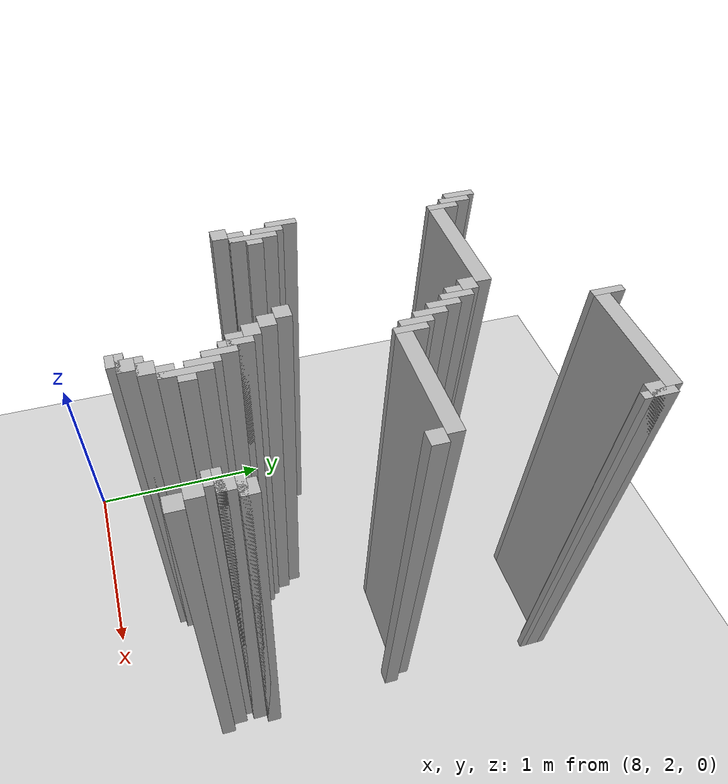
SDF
<sdf version="1.6">
 <world name="slam_world">
  <model name="ground_plane">
   <static>true</static>
   <link name="link">
    <collision name="collision">
     <geometry><plane><normal>0 0 1</normal><size>100 100</size></plane></geometry>
    </collision>
    <visual name="visual">
     <geometry><plane><normal>0 0 1</normal><size>100 100</size></plane></geometry>
     <material>
      <ambient>0.8 0.8 0.8 1</ambient>
      <diffuse>0.8 0.8 0.8 1</diffuse>
      <specular>0.8 0.8 0.8 1</specular>
     </material>
    </visual>
   </link>
  </model>
  <model name="wall_4324">
   <static>true</static>
   <pose>9.066125290023201 4.315545243619489 1.0 0 0 0</pose>
   <link name="link">
    <collision name="collision">
     <geometry><box><size>0.03480278422273782 0.13921113689095127 2.0</size></box></geometry>
    </collision>
    <visual name="visual">
     <geometry><box><size>0.03480278422273782 0.13921113689095127 2.0</size></box></geometry>
     <material><ambient>0.5 0.5 0.5 1</ambient><diffuse>0.7 0.7 0.7 1</diffuse></material>
    </visual>
   </link>
  </model>
  <model name="wall_4340">
   <static>true</static>
   <pose>9.344547563805104 4.280742459396752 1.0 0 0 0</pose>
   <link name="link">
    <collision name="collision">
     <geometry><box><size>0.5220417633410672 0.06960556844547564 2.0</size></box></geometry>
    </collision>
    <visual name="visual">
     <geometry><box><size>0.5220417633410672 0.06960556844547564 2.0</size></box></geometry>
     <material><ambient>0.5 0.5 0.5 1</ambient><diffuse>0.7 0.7 0.7 1</diffuse></material>
    </visual>
   </link>
  </model>
  <model name="wall_4352">
   <static>true</static>
   <pose>9.622969837587007 4.211136890951276 1.0 0 0 0</pose>
   <link name="link">
    <collision name="collision">
     <geometry><box><size>0.03480278422273782 0.13921113689095127 2.0</size></box></geometry>
    </collision>
    <visual name="visual">
     <geometry><box><size>0.03480278422273782 0.13921113689095127 2.0</size></box></geometry>
     <material><ambient>0.5 0.5 0.5 1</ambient><diffuse>0.7 0.7 0.7 1</diffuse></material>
    </visual>
   </link>
  </model>
  <model name="wall_4367">
   <static>true</static>
   <pose>9.605568445475638 4.211136890951276 1.0 0 0 0</pose>
   <link name="link">
    <collision name="collision">
     <geometry><box><size>0.06960556844547564 0.06960556844547564 2.0</size></box></geometry>
    </collision>
    <visual name="visual">
     <geometry><box><size>0.06960556844547564 0.06960556844547564 2.0</size></box></geometry>
     <material><ambient>0.5 0.5 0.5 1</ambient><diffuse>0.7 0.7 0.7 1</diffuse></material>
    </visual>
   </link>
  </model>
  <model name="wall_4427">
   <static>true</static>
   <pose>8.265661252900232 4.002320185614849 1.0 0 0 0</pose>
   <link name="link">
    <collision name="collision">
     <geometry><box><size>0.03480278422273782 0.13921113689095127 2.0</size></box></geometry>
    </collision>
    <visual name="visual">
     <geometry><box><size>0.03480278422273782 0.13921113689095127 2.0</size></box></geometry>
     <material><ambient>0.5 0.5 0.5 1</ambient><diffuse>0.7 0.7 0.7 1</diffuse></material>
    </visual>
   </link>
  </model>
  <model name="wall_4443">
   <static>true</static>
   <pose>8.30046403712297 3.967517401392111 1.0 0 0 0</pose>
   <link name="link">
    <collision name="collision">
     <geometry><box><size>0.03480278422273782 0.13921113689095127 2.0</size></box></geometry>
    </collision>
    <visual name="visual">
     <geometry><box><size>0.03480278422273782 0.13921113689095127 2.0</size></box></geometry>
     <material><ambient>0.5 0.5 0.5 1</ambient><diffuse>0.7 0.7 0.7 1</diffuse></material>
    </visual>
   </link>
  </model>
  <model name="wall_4468">
   <static>true</static>
   <pose>8.335266821345707 3.897911832946636 1.0 0 0 0</pose>
   <link name="link">
    <collision name="collision">
     <geometry><box><size>0.03480278422273782 0.13921113689095127 2.0</size></box></geometry>
    </collision>
    <visual name="visual">
     <geometry><box><size>0.03480278422273782 0.13921113689095127 2.0</size></box></geometry>
     <material><ambient>0.5 0.5 0.5 1</ambient><diffuse>0.7 0.7 0.7 1</diffuse></material>
    </visual>
   </link>
  </model>
  <model name="wall_4492">
   <static>true</static>
   <pose>8.61368909512761 3.863109048723898 1.0 0 0 0</pose>
   <link name="link">
    <collision name="collision">
     <geometry><box><size>0.5220417633410672 0.06960556844547564 2.0</size></box></geometry>
    </collision>
    <visual name="visual">
     <geometry><box><size>0.5220417633410672 0.06960556844547564 2.0</size></box></geometry>
     <material><ambient>0.5 0.5 0.5 1</ambient><diffuse>0.7 0.7 0.7 1</diffuse></material>
    </visual>
   </link>
  </model>
  <model name="wall_4505">
   <static>true</static>
   <pose>8.874709976798144 3.793503480278422 1.0 0 0 0</pose>
   <link name="link">
    <collision name="collision">
     <geometry><box><size>0.06960556844547564 0.06960556844547564 2.0</size></box></geometry>
    </collision>
    <visual name="visual">
     <geometry><box><size>0.06960556844547564 0.06960556844547564 2.0</size></box></geometry>
     <material><ambient>0.5 0.5 0.5 1</ambient><diffuse>0.7 0.7 0.7 1</diffuse></material>
    </visual>
   </link>
  </model>
  <model name="wall_4516">
   <static>true</static>
   <pose>8.92691415313225 3.7238979118329465 1.0 0 0 0</pose>
   <link name="link">
    <collision name="collision">
     <geometry><box><size>0.03480278422273782 0.13921113689095127 2.0</size></box></geometry>
    </collision>
    <visual name="visual">
     <geometry><box><size>0.03480278422273782 0.13921113689095127 2.0</size></box></geometry>
     <material><ambient>0.5 0.5 0.5 1</ambient><diffuse>0.7 0.7 0.7 1</diffuse></material>
    </visual>
   </link>
  </model>
  <model name="wall_4527">
   <static>true</static>
   <pose>8.909512761020881 3.7238979118329465 1.0 0 0 0</pose>
   <link name="link">
    <collision name="collision">
     <geometry><box><size>0.06960556844547564 0.06960556844547564 2.0</size></box></geometry>
    </collision>
    <visual name="visual">
     <geometry><box><size>0.06960556844547564 0.06960556844547564 2.0</size></box></geometry>
     <material><ambient>0.5 0.5 0.5 1</ambient><diffuse>0.7 0.7 0.7 1</diffuse></material>
    </visual>
   </link>
  </model>
  <model name="wall_4538">
   <static>true</static>
   <pose>8.961716937354987 3.6542923433874708 1.0 0 0 0</pose>
   <link name="link">
    <collision name="collision">
     <geometry><box><size>0.03480278422273782 0.13921113689095127 2.0</size></box></geometry>
    </collision>
    <visual name="visual">
     <geometry><box><size>0.03480278422273782 0.13921113689095127 2.0</size></box></geometry>
     <material><ambient>0.5 0.5 0.5 1</ambient><diffuse>0.7 0.7 0.7 1</diffuse></material>
    </visual>
   </link>
  </model>
  <model name="wall_4553">
   <static>true</static>
   <pose>8.996519721577727 3.584686774941995 1.0 0 0 0</pose>
   <link name="link">
    <collision name="collision">
     <geometry><box><size>0.03480278422273782 0.13921113689095127 2.0</size></box></geometry>
    </collision>
    <visual name="visual">
     <geometry><box><size>0.03480278422273782 0.13921113689095127 2.0</size></box></geometry>
     <material><ambient>0.5 0.5 0.5 1</ambient><diffuse>0.7 0.7 0.7 1</diffuse></material>
    </visual>
   </link>
  </model>
  <model name="wall_4568">
   <static>true</static>
   <pose>9.031322505800464 3.51508120649652 1.0 0 0 0</pose>
   <link name="link">
    <collision name="collision">
     <geometry><box><size>0.03480278422273782 0.13921113689095127 2.0</size></box></geometry>
    </collision>
    <visual name="visual">
     <geometry><box><size>0.03480278422273782 0.13921113689095127 2.0</size></box></geometry>
     <material><ambient>0.5 0.5 0.5 1</ambient><diffuse>0.7 0.7 0.7 1</diffuse></material>
    </visual>
   </link>
  </model>
  <model name="wall_4579">
   <static>true</static>
   <pose>9.066125290023201 3.480278422273782 1.0 0 0 0</pose>
   <link name="link">
    <collision name="collision">
     <geometry><box><size>0.03480278422273782 0.13921113689095127 2.0</size></box></geometry>
    </collision>
    <visual name="visual">
     <geometry><box><size>0.03480278422273782 0.13921113689095127 2.0</size></box></geometry>
     <material><ambient>0.5 0.5 0.5 1</ambient><diffuse>0.7 0.7 0.7 1</diffuse></material>
    </visual>
   </link>
  </model>
  <model name="wall_4597">
   <static>true</static>
   <pose>9.344547563805104 3.445475638051044 1.0 0 0 0</pose>
   <link name="link">
    <collision name="collision">
     <geometry><box><size>0.5220417633410672 0.06960556844547564 2.0</size></box></geometry>
    </collision>
    <visual name="visual">
     <geometry><box><size>0.5220417633410672 0.06960556844547564 2.0</size></box></geometry>
     <material><ambient>0.5 0.5 0.5 1</ambient><diffuse>0.7 0.7 0.7 1</diffuse></material>
    </visual>
   </link>
  </model>
  <model name="wall_4618">
   <static>true</static>
   <pose>9.605568445475638 3.3758700696055683 1.0 0 0 0</pose>
   <link name="link">
    <collision name="collision">
     <geometry><box><size>0.06960556844547564 0.06960556844547564 2.0</size></box></geometry>
    </collision>
    <visual name="visual">
     <geometry><box><size>0.06960556844547564 0.06960556844547564 2.0</size></box></geometry>
     <material><ambient>0.5 0.5 0.5 1</ambient><diffuse>0.7 0.7 0.7 1</diffuse></material>
    </visual>
   </link>
  </model>
  <model name="wall_4693">
   <static>true</static>
   <pose>8.265661252900232 3.167053364269141 1.0 0 0 0</pose>
   <link name="link">
    <collision name="collision">
     <geometry><box><size>0.03480278422273782 0.13921113689095127 2.0</size></box></geometry>
    </collision>
    <visual name="visual">
     <geometry><box><size>0.03480278422273782 0.13921113689095127 2.0</size></box></geometry>
     <material><ambient>0.5 0.5 0.5 1</ambient><diffuse>0.7 0.7 0.7 1</diffuse></material>
    </visual>
   </link>
  </model>
  <model name="wall_4710">
   <static>true</static>
   <pose>8.30046403712297 3.097447795823666 1.0 0 0 0</pose>
   <link name="link">
    <collision name="collision">
     <geometry><box><size>0.03480278422273782 0.13921113689095127 2.0</size></box></geometry>
    </collision>
    <visual name="visual">
     <geometry><box><size>0.03480278422273782 0.13921113689095127 2.0</size></box></geometry>
     <material><ambient>0.5 0.5 0.5 1</ambient><diffuse>0.7 0.7 0.7 1</diffuse></material>
    </visual>
   </link>
  </model>
  <model name="wall_4727">
   <static>true</static>
   <pose>8.335266821345707 3.02784222737819 1.0 0 0 0</pose>
   <link name="link">
    <collision name="collision">
     <geometry><box><size>0.03480278422273782 0.2088167053364269 2.0</size></box></geometry>
    </collision>
    <visual name="visual">
     <geometry><box><size>0.03480278422273782 0.2088167053364269 2.0</size></box></geometry>
     <material><ambient>0.5 0.5 0.5 1</ambient><diffuse>0.7 0.7 0.7 1</diffuse></material>
    </visual>
   </link>
  </model>
  <model name="wall_4749">
   <static>true</static>
   <pose>8.370069605568444 3.02784222737819 1.0 0 0 0</pose>
   <link name="link">
    <collision name="collision">
     <geometry><box><size>0.03480278422273782 0.06960556844547564 2.0</size></box></geometry>
    </collision>
    <visual name="visual">
     <geometry><box><size>0.03480278422273782 0.06960556844547564 2.0</size></box></geometry>
     <material><ambient>0.5 0.5 0.5 1</ambient><diffuse>0.7 0.7 0.7 1</diffuse></material>
    </visual>
   </link>
  </model>
  <model name="wall_4750">
   <static>true</static>
   <pose>8.839907192575406 3.02784222737819 1.0 0 0 0</pose>
   <link name="link">
    <collision name="collision">
     <geometry><box><size>0.06960556844547564 0.06960556844547564 2.0</size></box></geometry>
    </collision>
    <visual name="visual">
     <geometry><box><size>0.06960556844547564 0.06960556844547564 2.0</size></box></geometry>
     <material><ambient>0.5 0.5 0.5 1</ambient><diffuse>0.7 0.7 0.7 1</diffuse></material>
    </visual>
   </link>
  </model>
  <model name="wall_4769">
   <static>true</static>
   <pose>8.317865429234338 2.9582366589327145 1.0 0 0 0</pose>
   <link name="link">
    <collision name="collision">
     <geometry><box><size>0.06960556844547564 0.06960556844547564 2.0</size></box></geometry>
    </collision>
    <visual name="visual">
     <geometry><box><size>0.06960556844547564 0.06960556844547564 2.0</size></box></geometry>
     <material><ambient>0.5 0.5 0.5 1</ambient><diffuse>0.7 0.7 0.7 1</diffuse></material>
    </visual>
   </link>
  </model>
  <model name="wall_4770">
   <static>true</static>
   <pose>8.874709976798144 2.9582366589327145 1.0 0 0 0</pose>
   <link name="link">
    <collision name="collision">
     <geometry><box><size>0.06960556844547564 0.06960556844547564 2.0</size></box></geometry>
    </collision>
    <visual name="visual">
     <geometry><box><size>0.06960556844547564 0.06960556844547564 2.0</size></box></geometry>
     <material><ambient>0.5 0.5 0.5 1</ambient><diffuse>0.7 0.7 0.7 1</diffuse></material>
    </visual>
   </link>
  </model>
  <model name="wall_4789">
   <static>true</static>
   <pose>8.2830626450116 2.8886310904872388 1.0 0 0 0</pose>
   <link name="link">
    <collision name="collision">
     <geometry><box><size>0.06960556844547564 0.06960556844547564 2.0</size></box></geometry>
    </collision>
    <visual name="visual">
     <geometry><box><size>0.06960556844547564 0.06960556844547564 2.0</size></box></geometry>
     <material><ambient>0.5 0.5 0.5 1</ambient><diffuse>0.7 0.7 0.7 1</diffuse></material>
    </visual>
   </link>
  </model>
  <model name="wall_4790">
   <static>true</static>
   <pose>8.909512761020881 2.8886310904872388 1.0 0 0 0</pose>
   <link name="link">
    <collision name="collision">
     <geometry><box><size>0.06960556844547564 0.06960556844547564 2.0</size></box></geometry>
    </collision>
    <visual name="visual">
     <geometry><box><size>0.06960556844547564 0.06960556844547564 2.0</size></box></geometry>
     <material><ambient>0.5 0.5 0.5 1</ambient><diffuse>0.7 0.7 0.7 1</diffuse></material>
    </visual>
   </link>
  </model>
  <model name="wall_4803">
   <static>true</static>
   <pose>8.961716937354987 2.819025522041763 1.0 0 0 0</pose>
   <link name="link">
    <collision name="collision">
     <geometry><box><size>0.03480278422273782 0.13921113689095127 2.0</size></box></geometry>
    </collision>
    <visual name="visual">
     <geometry><box><size>0.03480278422273782 0.13921113689095127 2.0</size></box></geometry>
     <material><ambient>0.5 0.5 0.5 1</ambient><diffuse>0.7 0.7 0.7 1</diffuse></material>
    </visual>
   </link>
  </model>
  <model name="wall_4816">
   <static>true</static>
   <pose>8.944315545243619 2.819025522041763 1.0 0 0 0</pose>
   <link name="link">
    <collision name="collision">
     <geometry><box><size>0.06960556844547564 0.06960556844547564 2.0</size></box></geometry>
    </collision>
    <visual name="visual">
     <geometry><box><size>0.06960556844547564 0.06960556844547564 2.0</size></box></geometry>
     <material><ambient>0.5 0.5 0.5 1</ambient><diffuse>0.7 0.7 0.7 1</diffuse></material>
    </visual>
   </link>
  </model>
  <model name="wall_4829">
   <static>true</static>
   <pose>8.996519721577727 2.7494199535962878 1.0 0 0 0</pose>
   <link name="link">
    <collision name="collision">
     <geometry><box><size>0.03480278422273782 0.13921113689095127 2.0</size></box></geometry>
    </collision>
    <visual name="visual">
     <geometry><box><size>0.03480278422273782 0.13921113689095127 2.0</size></box></geometry>
     <material><ambient>0.5 0.5 0.5 1</ambient><diffuse>0.7 0.7 0.7 1</diffuse></material>
    </visual>
   </link>
  </model>
  <model name="wall_4846">
   <static>true</static>
   <pose>9.031322505800464 2.679814385150812 1.0 0 0 0</pose>
   <link name="link">
    <collision name="collision">
     <geometry><box><size>0.03480278422273782 0.13921113689095127 2.0</size></box></geometry>
    </collision>
    <visual name="visual">
     <geometry><box><size>0.03480278422273782 0.13921113689095127 2.0</size></box></geometry>
     <material><ambient>0.5 0.5 0.5 1</ambient><diffuse>0.7 0.7 0.7 1</diffuse></material>
    </visual>
   </link>
  </model>
  <model name="wall_4847">
   <static>true</static>
   <pose>9.640371229698376 2.71461716937355 1.0 0 0 0</pose>
   <link name="link">
    <collision name="collision">
     <geometry><box><size>0.06960556844547564 0.06960556844547564 2.0</size></box></geometry>
    </collision>
    <visual name="visual">
     <geometry><box><size>0.06960556844547564 0.06960556844547564 2.0</size></box></geometry>
     <material><ambient>0.5 0.5 0.5 1</ambient><diffuse>0.7 0.7 0.7 1</diffuse></material>
    </visual>
   </link>
  </model>
  <model name="wall_4859">
   <static>true</static>
   <pose>9.066125290023201 2.6102088167053363 1.0 0 0 0</pose>
   <link name="link">
    <collision name="collision">
     <geometry><box><size>0.03480278422273782 0.2088167053364269 2.0</size></box></geometry>
    </collision>
    <visual name="visual">
     <geometry><box><size>0.03480278422273782 0.2088167053364269 2.0</size></box></geometry>
     <material><ambient>0.5 0.5 0.5 1</ambient><diffuse>0.7 0.7 0.7 1</diffuse></material>
    </visual>
   </link>
  </model>
  <model name="wall_4860">
   <static>true</static>
   <pose>9.622969837587007 2.6972157772621808 1.0 0 0 0</pose>
   <link name="link">
    <collision name="collision">
     <geometry><box><size>0.10440835266821345 0.03480278422273782 2.0</size></box></geometry>
    </collision>
    <visual name="visual">
     <geometry><box><size>0.10440835266821345 0.03480278422273782 2.0</size></box></geometry>
     <material><ambient>0.5 0.5 0.5 1</ambient><diffuse>0.7 0.7 0.7 1</diffuse></material>
    </visual>
   </link>
  </model>
  <model name="wall_4868">
   <static>true</static>
   <pose>9.605568445475638 2.645011600928074 1.0 0 0 0</pose>
   <link name="link">
    <collision name="collision">
     <geometry><box><size>0.06960556844547564 0.06960556844547564 2.0</size></box></geometry>
    </collision>
    <visual name="visual">
     <geometry><box><size>0.06960556844547564 0.06960556844547564 2.0</size></box></geometry>
     <material><ambient>0.5 0.5 0.5 1</ambient><diffuse>0.7 0.7 0.7 1</diffuse></material>
    </visual>
   </link>
  </model>
  <model name="wall_4877">
   <static>true</static>
   <pose>9.100928074245939 2.6102088167053363 1.0 0 0 0</pose>
   <link name="link">
    <collision name="collision">
     <geometry><box><size>0.03480278422273782 0.06960556844547564 2.0</size></box></geometry>
    </collision>
    <visual name="visual">
     <geometry><box><size>0.03480278422273782 0.06960556844547564 2.0</size></box></geometry>
     <material><ambient>0.5 0.5 0.5 1</ambient><diffuse>0.7 0.7 0.7 1</diffuse></material>
    </visual>
   </link>
  </model>
  <model name="wall_4878">
   <static>true</static>
   <pose>9.588167053364268 2.627610208816705 1.0 0 0 0</pose>
   <link name="link">
    <collision name="collision">
     <geometry><box><size>0.10440835266821345 0.03480278422273782 2.0</size></box></geometry>
    </collision>
    <visual name="visual">
     <geometry><box><size>0.10440835266821345 0.03480278422273782 2.0</size></box></geometry>
     <material><ambient>0.5 0.5 0.5 1</ambient><diffuse>0.7 0.7 0.7 1</diffuse></material>
    </visual>
   </link>
  </model>
  <model name="wall_4891">
   <static>true</static>
   <pose>9.5707656612529 2.5928074245939676 1.0 0 0 0</pose>
   <link name="link">
    <collision name="collision">
     <geometry><box><size>0.06960556844547564 0.03480278422273782 2.0</size></box></geometry>
    </collision>
    <visual name="visual">
     <geometry><box><size>0.06960556844547564 0.03480278422273782 2.0</size></box></geometry>
     <material><ambient>0.5 0.5 0.5 1</ambient><diffuse>0.7 0.7 0.7 1</diffuse></material>
    </visual>
   </link>
  </model>
  <model name="wall_4905">
   <static>true</static>
   <pose>9.048723897911833 2.5406032482598606 1.0 0 0 0</pose>
   <link name="link">
    <collision name="collision">
     <geometry><box><size>0.06960556844547564 0.06960556844547564 2.0</size></box></geometry>
    </collision>
    <visual name="visual">
     <geometry><box><size>0.06960556844547564 0.06960556844547564 2.0</size></box></geometry>
     <material><ambient>0.5 0.5 0.5 1</ambient><diffuse>0.7 0.7 0.7 1</diffuse></material>
    </visual>
   </link>
  </model>
  <model name="wall_4906">
   <static>true</static>
   <pose>9.605568445475638 2.5406032482598606 1.0 0 0 0</pose>
   <link name="link">
    <collision name="collision">
     <geometry><box><size>0.06960556844547564 0.06960556844547564 2.0</size></box></geometry>
    </collision>
    <visual name="visual">
     <geometry><box><size>0.06960556844547564 0.06960556844547564 2.0</size></box></geometry>
     <material><ambient>0.5 0.5 0.5 1</ambient><diffuse>0.7 0.7 0.7 1</diffuse></material>
    </visual>
   </link>
  </model>
  <model name="wall_4932">
   <static>true</static>
   <pose>9.013921113689095 2.470997679814385 1.0 0 0 0</pose>
   <link name="link">
    <collision name="collision">
     <geometry><box><size>0.06960556844547564 0.06960556844547564 2.0</size></box></geometry>
    </collision>
    <visual name="visual">
     <geometry><box><size>0.06960556844547564 0.06960556844547564 2.0</size></box></geometry>
     <material><ambient>0.5 0.5 0.5 1</ambient><diffuse>0.7 0.7 0.7 1</diffuse></material>
    </visual>
   </link>
  </model>
  <model name="wall_4933">
   <static>true</static>
   <pose>9.640371229698376 2.470997679814385 1.0 0 0 0</pose>
   <link name="link">
    <collision name="collision">
     <geometry><box><size>0.06960556844547564 0.06960556844547564 2.0</size></box></geometry>
    </collision>
    <visual name="visual">
     <geometry><box><size>0.06960556844547564 0.06960556844547564 2.0</size></box></geometry>
     <material><ambient>0.5 0.5 0.5 1</ambient><diffuse>0.7 0.7 0.7 1</diffuse></material>
    </visual>
   </link>
  </model>
  <model name="wall_4949">
   <static>true</static>
   <pose>8.996519721577727 2.453596287703016 1.0 0 0 0</pose>
   <link name="link">
    <collision name="collision">
     <geometry><box><size>0.10440835266821345 0.03480278422273782 2.0</size></box></geometry>
    </collision>
    <visual name="visual">
     <geometry><box><size>0.10440835266821345 0.03480278422273782 2.0</size></box></geometry>
     <material><ambient>0.5 0.5 0.5 1</ambient><diffuse>0.7 0.7 0.7 1</diffuse></material>
    </visual>
   </link>
  </model>
  <model name="wall_4964">
   <static>true</static>
   <pose>8.979118329466356 2.4013921113689096 1.0 0 0 0</pose>
   <link name="link">
    <collision name="collision">
     <geometry><box><size>0.06960556844547564 0.06960556844547564 2.0</size></box></geometry>
    </collision>
    <visual name="visual">
     <geometry><box><size>0.06960556844547564 0.06960556844547564 2.0</size></box></geometry>
     <material><ambient>0.5 0.5 0.5 1</ambient><diffuse>0.7 0.7 0.7 1</diffuse></material>
    </visual>
   </link>
  </model>
  <model name="wall_4980">
   <static>true</static>
   <pose>8.961716937354987 2.3839907192575405 1.0 0 0 0</pose>
   <link name="link">
    <collision name="collision">
     <geometry><box><size>0.10440835266821345 0.03480278422273782 2.0</size></box></geometry>
    </collision>
    <visual name="visual">
     <geometry><box><size>0.10440835266821345 0.03480278422273782 2.0</size></box></geometry>
     <material><ambient>0.5 0.5 0.5 1</ambient><diffuse>0.7 0.7 0.7 1</diffuse></material>
    </visual>
   </link>
  </model>
  <model name="wall_4992">
   <static>true</static>
   <pose>8.944315545243619 2.3491879350348026 1.0 0 0 0</pose>
   <link name="link">
    <collision name="collision">
     <geometry><box><size>0.06960556844547564 0.03480278422273782 2.0</size></box></geometry>
    </collision>
    <visual name="visual">
     <geometry><box><size>0.06960556844547564 0.03480278422273782 2.0</size></box></geometry>
     <material><ambient>0.5 0.5 0.5 1</ambient><diffuse>0.7 0.7 0.7 1</diffuse></material>
    </visual>
   </link>
  </model>
 </world>
</sdf>
